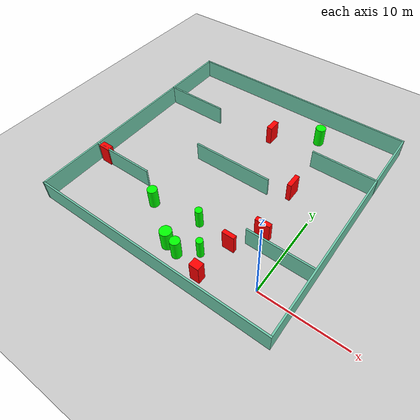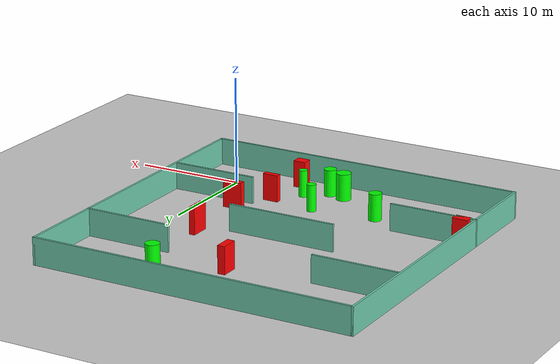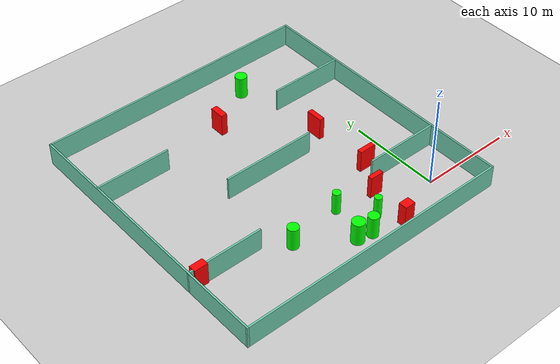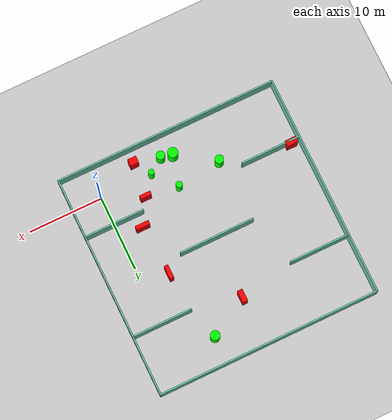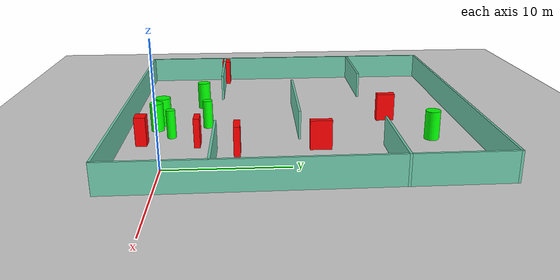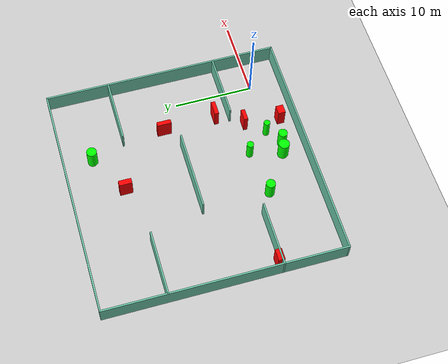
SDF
<sdf version="1.7">
 <world name="default">
  <light name="sun" type="directional">
   <pose>0 0 10 0 -0 0</pose>
   <diffuse>0.8 0.8 0.8 1</diffuse>
   <specular>0.2 0.2 0.2 1</specular>
   <attenuation>
    <range>1000</range>
    <constant>0.9</constant>
    <linear>0.01</linear>
    <quadratic>0.001</quadratic>
   </attenuation>
   <direction>-0.5 0.1 -0.9</direction>
   <spot><inner_angle>0</inner_angle><outer_angle>0</outer_angle><falloff>0</falloff></spot>
  </light>
  <model name="ground_plane">
   <static>1</static>
   <link name="link">
    <collision name="collision">
     <geometry><plane><normal>0 0 1</normal><size>100 100</size></plane></geometry>
     <surface>
      <contact><collide_bitmask>65535</collide_bitmask></contact>
      <friction><ode><mu>100</mu><mu2>50</mu2></ode></friction>
     </surface>
    </collision>
    <visual name="visual">
     <cast_shadows>0</cast_shadows>
     <geometry><plane><normal>0 0 1</normal><size>100 100</size></plane></geometry>
     <material>
      <script><uri>file://media/materials/scripts/gazebo.material</uri><name>Gazebo/Grey</name></script>
     </material>
    </visual>
   </link>
  </model>
  <gravity>0 0 -9.8</gravity>
  <magnetic_field>6e-06 2.3e-05 -4.2e-05</magnetic_field>
  <atmosphere type="adiabatic"/>
  <physics type="ode">
   <max_step_size>0.001</max_step_size>
   <real_time_factor>1</real_time_factor>
   <real_time_update_rate>1000</real_time_update_rate>
  </physics>
  <scene><ambient>0.4 0.4 0.4 1</ambient><background>0.7 0.7 0.7 1</background><shadows>1</shadows></scene>
  <spherical_coordinates>
   <surface_model>EARTH_WGS84</surface_model>
   <latitude_deg>0</latitude_deg>
   <longitude_deg>0</longitude_deg>
   <elevation>0</elevation>
   <heading_deg>0</heading_deg>
  </spherical_coordinates>
  <model name="my_base_walls">
   <link name="Wall_10">
    <collision name="Wall_10_Collision">
     <geometry><box><size>8.2 0.2 2.5</size></box></geometry>
     <pose>0 0 1.25 0 -0 0</pose>
    </collision>
    <visual name="Wall_10_Visual">
     <pose>0 0 1.25 0 -0 0</pose>
     <geometry><box><size>8.2 0.2 2.5</size></box></geometry>
     <material>
      <script><uri>file://media/materials/scripts/gazebo.material</uri><name>Gazebo/Grey</name></script>
      <ambient>0.435294 0.796078 0.67451 1</ambient>
     </material>
     <meta><layer>0</layer></meta>
    </visual>
    <pose>-11 -7 0 0 -0 0</pose>
   </link>
   <link name="Wall_12">
    <collision name="Wall_12_Collision">
     <geometry><box><size>8.2 0.2 2.5</size></box></geometry>
     <pose>0 0 1.25 0 -0 0</pose>
    </collision>
    <visual name="Wall_12_Visual">
     <pose>0 0 1.25 0 -0 0</pose>
     <geometry><box><size>8.2 0.2 2.5</size></box></geometry>
     <material>
      <script><uri>file://media/materials/scripts/gazebo.material</uri><name>Gazebo/Grey</name></script>
      <ambient>0.435294 0.796078 0.67451 1</ambient>
     </material>
     <meta><layer>0</layer></meta>
    </visual>
    <pose>-11 7 0 0 -0 0</pose>
   </link>
   <link name="Wall_14">
    <collision name="Wall_14_Collision">
     <geometry><box><size>8.2 0.2 2.5</size></box></geometry>
     <pose>0 0 1.25 0 -0 0</pose>
    </collision>
    <visual name="Wall_14_Visual">
     <pose>0 0 1.25 0 -0 0</pose>
     <geometry><box><size>8.2 0.2 2.5</size></box></geometry>
     <material>
      <script><uri>file://media/materials/scripts/gazebo.material</uri><name>Gazebo/Grey</name></script>
      <ambient>0.435294 0.796078 0.67451 1</ambient>
     </material>
     <meta><layer>0</layer></meta>
    </visual>
    <pose>11 7 0 0 -0 3.14159</pose>
   </link>
   <link name="Wall_16">
    <collision name="Wall_16_Collision">
     <geometry><box><size>10.2 0.2 2.5</size></box></geometry>
     <pose>0 0 1.25 0 -0 0</pose>
    </collision>
    <visual name="Wall_16_Visual">
     <pose>0 0 1.25 0 -0 0</pose>
     <geometry><box><size>10.2 0.2 2.5</size></box></geometry>
     <material>
      <script><uri>file://media/materials/scripts/gazebo.material</uri><name>Gazebo/Grey</name></script>
      <ambient>0.435294 0.796078 0.67451 1</ambient>
     </material>
     <meta><layer>0</layer></meta>
    </visual>
    <pose>0 0 0 0 -0 3.14159</pose>
   </link>
   <link name="Wall_2">
    <collision name="Wall_2_Collision">
     <geometry><box><size>30.2 0.2 2.5</size></box></geometry>
     <pose>0 0 1.25 0 -0 0</pose>
    </collision>
    <visual name="Wall_2_Visual">
     <pose>0 0 1.25 0 -0 0</pose>
     <geometry><box><size>30.2 0.2 2.5</size></box></geometry>
     <material>
      <script><uri>file://media/materials/scripts/gazebo.material</uri><name>Gazebo/Grey</name></script>
      <ambient>0.435294 0.796078 0.67451 1</ambient>
     </material>
     <meta><layer>0</layer></meta>
    </visual>
    <pose>0 -15 0 0 -0 3.14159</pose>
   </link>
   <link name="Wall_3">
    <collision name="Wall_3_Collision">
     <geometry><box><size>30.2 0.2 2.5</size></box></geometry>
     <pose>0 0 1.25 0 -0 0</pose>
    </collision>
    <visual name="Wall_3_Visual">
     <pose>0 0 1.25 0 -0 0</pose>
     <geometry><box><size>30.2 0.2 2.5</size></box></geometry>
     <material>
      <script><uri>file://media/materials/scripts/gazebo.material</uri><name>Gazebo/Grey</name></script>
      <ambient>0.435294 0.796078 0.67451 1</ambient>
     </material>
     <meta><layer>0</layer></meta>
    </visual>
    <pose>-15 0 0 0 -0 1.5708</pose>
   </link>
   <link name="Wall_4">
    <collision name="Wall_4_Collision">
     <geometry><box><size>30.2 0.2 2.5</size></box></geometry>
     <pose>0 0 1.25 0 -0 0</pose>
    </collision>
    <visual name="Wall_4_Visual">
     <pose>0 0 1.25 0 -0 0</pose>
     <geometry><box><size>30.2 0.2 2.5</size></box></geometry>
     <material>
      <script><uri>file://media/materials/scripts/gazebo.material</uri><name>Gazebo/Grey</name></script>
      <ambient>0.435294 0.796078 0.67451 1</ambient>
     </material>
     <meta><layer>0</layer></meta>
    </visual>
    <pose>0 15 0 0 -0 0</pose>
   </link>
   <link name="Wall_6">
    <collision name="Wall_6_Collision">
     <geometry><box><size>30.2 0.2 2.5</size></box></geometry>
     <pose>0 0 1.25 0 -0 0</pose>
    </collision>
    <visual name="Wall_6_Visual">
     <pose>0 0 1.25 0 -0 0</pose>
     <geometry><box><size>30.2 0.2 2.5</size></box></geometry>
     <material>
      <script><uri>file://media/materials/scripts/gazebo.material</uri><name>Gazebo/Grey</name></script>
      <ambient>0.435294 0.796078 0.67451 1</ambient>
     </material>
     <meta><layer>0</layer></meta>
    </visual>
    <pose>15 0 0 0 -0 1.5708</pose>
   </link>
   <link name="Wall_8">
    <collision name="Wall_8_Collision">
     <geometry><box><size>8.2 0.2 2.5</size></box></geometry>
     <pose>0 0 1.25 0 -0 0</pose>
    </collision>
    <visual name="Wall_8_Visual">
     <pose>0 0 1.25 0 -0 0</pose>
     <geometry><box><size>8.2 0.2 2.5</size></box></geometry>
     <material>
      <script><uri>file://media/materials/scripts/gazebo.material</uri><name>Gazebo/Grey</name></script>
      <ambient>0.435294 0.796078 0.67451 1</ambient>
     </material>
     <meta><layer>0</layer></meta>
    </visual>
    <pose>11 -7 0 0 -0 3.14159</pose>
   </link>
   <static>1</static>
   <pose>-11 11 0 0 -0 0</pose>
  </model>
  <model name="cylinder1">
   <static>1</static>
   <link name="link">
    <inertial>
     <mass>1</mass>
     <inertia><ixx>0.5</ixx><ixy>0</ixy><ixz>0</ixz><iyy>0.5</iyy><iyz>0</iyz><izz>1</izz></inertia>
    </inertial>
    <collision name="collision">
     <geometry><cylinder><radius>0.5888725052651238</radius><length>2.5</length></cylinder></geometry>
    </collision>
    <visual name="visual">
     <geometry><cylinder><radius>0.5888725052651238</radius><length>2.5</length></cylinder></geometry>
     <material>
      <ambient>0 1 0 1</ambient>
      <diffuse>0 1 0 1</diffuse>
      <specular>0.1 0.1 0.1 1</specular>
      <emissive>0 0 0 0</emissive>
     </material>
    </visual>
   </link>
   <pose>-15.526053412583764 2.2998769692267667 1.25 0 0 0</pose>
  </model>
  <model name="cylinder2">
   <static>1</static>
   <link name="link">
    <inertial>
     <mass>1</mass>
     <inertia><ixx>0.5</ixx><ixy>0</ixy><ixz>0</ixz><iyy>0.5</iyy><iyz>0</iyz><izz>1</izz></inertia>
    </inertial>
    <collision name="collision">
     <geometry><cylinder><radius>0.6853110854791115</radius><length>2.5</length></cylinder></geometry>
    </collision>
    <visual name="visual">
     <geometry><cylinder><radius>0.6853110854791115</radius><length>2.5</length></cylinder></geometry>
     <material>
      <ambient>0 1 0 1</ambient>
      <diffuse>0 1 0 1</diffuse>
      <specular>0.1 0.1 0.1 1</specular>
      <emissive>0 0 0 0</emissive>
     </material>
    </visual>
   </link>
   <pose>-10.592338317497905 -1.0340845019596032 1.25 0 0 0</pose>
  </model>
  <model name="cylinder3">
   <static>1</static>
   <link name="link">
    <inertial>
     <mass>1</mass>
     <inertia><ixx>0.5</ixx><ixy>0</ixy><ixz>0</ixz><iyy>0.5</iyy><iyz>0</iyz><izz>1</izz></inertia>
    </inertial>
    <collision name="collision">
     <geometry><cylinder><radius>0.3954229242927821</radius><length>2.5</length></cylinder></geometry>
    </collision>
    <visual name="visual">
     <geometry><cylinder><radius>0.3954229242927821</radius><length>2.5</length></cylinder></geometry>
     <material>
      <ambient>0 1 0 1</ambient>
      <diffuse>0 1 0 1</diffuse>
      <specular>0.1 0.1 0.1 1</specular>
      <emissive>0 0 0 0</emissive>
     </material>
    </visual>
   </link>
   <pose>-7.052629020851427 0.06524100652238651 1.25 0 0 0</pose>
  </model>
  <model name="cylinder4">
   <static>1</static>
   <link name="link">
    <inertial>
     <mass>1</mass>
     <inertia><ixx>0.5</ixx><ixy>0</ixy><ixz>0</ixz><iyy>0.5</iyy><iyz>0</iyz><izz>1</izz></inertia>
    </inertial>
    <collision name="collision">
     <geometry><cylinder><radius>0.43055923438020055</radius><length>2.5</length></cylinder></geometry>
    </collision>
    <visual name="visual">
     <geometry><cylinder><radius>0.43055923438020055</radius><length>2.5</length></cylinder></geometry>
     <material>
      <ambient>0 1 0 1</ambient>
      <diffuse>0 1 0 1</diffuse>
      <specular>0.1 0.1 0.1 1</specular>
      <emissive>0 0 0 0</emissive>
     </material>
    </visual>
   </link>
   <pose>-9.550924104338485 3.0297227317382918 1.25 0 0 0</pose>
  </model>
  <model name="cylinder5">
   <static>1</static>
   <link name="link">
    <inertial>
     <mass>1</mass>
     <inertia><ixx>0.5</ixx><ixy>0</ixy><ixz>0</ixz><iyy>0.5</iyy><iyz>0</iyz><izz>1</izz></inertia>
    </inertial>
    <collision name="collision">
     <geometry><cylinder><radius>0.5733685218423219</radius><length>2.5</length></cylinder></geometry>
    </collision>
    <visual name="visual">
     <geometry><cylinder><radius>0.5733685218423219</radius><length>2.5</length></cylinder></geometry>
     <material>
      <ambient>0 1 0 1</ambient>
      <diffuse>0 1 0 1</diffuse>
      <specular>0.1 0.1 0.1 1</specular>
      <emissive>0 0 0 0</emissive>
     </material>
    </visual>
   </link>
   <pose>-9.042009280070367 -1.3885204833985179 1.25 0 0 0</pose>
  </model>
  <model name="cylinder6">
   <static>1</static>
   <link name="link">
    <inertial>
     <mass>1</mass>
     <inertia><ixx>0.5</ixx><ixy>0</ixy><ixz>0</ixz><iyy>0.5</iyy><iyz>0</iyz><izz>1</izz></inertia>
    </inertial>
    <collision name="collision">
     <geometry><cylinder><radius>0.6361255204952445</radius><length>2.5</length></cylinder></geometry>
    </collision>
    <visual name="visual">
     <geometry><cylinder><radius>0.6361255204952445</radius><length>2.5</length></cylinder></geometry>
     <material>
      <ambient>0 1 0 1</ambient>
      <diffuse>0 1 0 1</diffuse>
      <specular>0.1 0.1 0.1 1</specular>
      <emissive>0 0 0 0</emissive>
     </material>
    </visual>
   </link>
   <pose>-5.300601197467428 22.292888438461585 1.25 0 0 0</pose>
  </model>
  <model name="box1">
   <static>1</static>
   <link name="link">
    <inertial>
     <mass>1</mass>
     <inertia><ixx>0.083</ixx><ixy>0</ixy><ixz>0</ixz><iyy>0.083</iyy><iyz>0</iyz><izz>0.083</izz></inertia>
    </inertial>
    <collision name="collision">
     <geometry><box><size>1.4763507559371232 0.503533764172162 2.5</size></box></geometry>
    </collision>
    <visual name="visual">
     <geometry><box><size>1.4763507559371232 0.503533764172162 2.5</size></box></geometry>
     <material>
      <ambient>1 0 0 1</ambient>
      <diffuse>1 0 0 1</diffuse>
      <specular>0.1 0.1 0.1 1</specular>
      <emissive>0 0 0 0</emissive>
     </material>
    </visual>
    <sensor name="my_contact" type="contact">
     <contact><collision>box_collision</collision><topic>__default_topic__</topic></contact>
    </sensor>
   </link>
   <pose>-5.125070152418303 2.43808369590932 1.25 0 0 0</pose>
  </model>
  <model name="box2">
   <static>1</static>
   <link name="link">
    <inertial>
     <mass>1</mass>
     <inertia><ixx>0.083</ixx><ixy>0</ixy><ixz>0</ixz><iyy>0.083</iyy><iyz>0</iyz><izz>0.083</izz></inertia>
    </inertial>
    <collision name="collision">
     <geometry><box><size>0.5477274665204496 1.8189069124461932 2.5</size></box></geometry>
    </collision>
    <visual name="visual">
     <geometry><box><size>0.5477274665204496 1.8189069124461932 2.5</size></box></geometry>
     <material>
      <ambient>1 0 0 1</ambient>
      <diffuse>1 0 0 1</diffuse>
      <specular>0.1 0.1 0.1 1</specular>
      <emissive>0 0 0 0</emissive>
     </material>
    </visual>
    <sensor name="my_contact" type="contact">
     <contact><collision>box_collision</collision><topic>__default_topic__</topic></contact>
    </sensor>
   </link>
   <pose>-3.580577522203228 12.56502714666911 1.25 0 0 0</pose>
  </model>
  <model name="box3">
   <static>1</static>
   <link name="link">
    <inertial>
     <mass>1</mass>
     <inertia><ixx>0.083</ixx><ixy>0</ixy><ixz>0</ixz><iyy>0.083</iyy><iyz>0</iyz><izz>0.083</izz></inertia>
    </inertial>
    <collision name="collision">
     <geometry><box><size>0.6854961591823475 1.6256352811311934 2.5</size></box></geometry>
    </collision>
    <visual name="visual">
     <geometry><box><size>0.6854961591823475 1.6256352811311934 2.5</size></box></geometry>
     <material>
      <ambient>1 0 0 1</ambient>
      <diffuse>1 0 0 1</diffuse>
      <specular>0.1 0.1 0.1 1</specular>
      <emissive>0 0 0 0</emissive>
     </material>
    </visual>
    <sensor name="my_contact" type="contact">
     <contact><collision>box_collision</collision><topic>__default_topic__</topic></contact>
    </sensor>
   </link>
   <pose>-10.555352244518597 19.286267451774137 1.25 0 0 0</pose>
  </model>
  <model name="box4">
   <static>1</static>
   <link name="link">
    <inertial>
     <mass>1</mass>
     <inertia><ixx>0.083</ixx><ixy>0</ixy><ixz>0</ixz><iyy>0.083</iyy><iyz>0</iyz><izz>0.083</izz></inertia>
    </inertial>
    <collision name="collision">
     <geometry><box><size>1.1532100894103225 0.9339147296525114 2.5</size></box></geometry>
    </collision>
    <visual name="visual">
     <geometry><box><size>1.1532100894103225 0.9339147296525114 2.5</size></box></geometry>
     <material>
      <ambient>1 0 0 1</ambient>
      <diffuse>1 0 0 1</diffuse>
      <specular>0.1 0.1 0.1 1</specular>
      <emissive>0 0 0 0</emissive>
     </material>
    </visual>
    <sensor name="my_contact" type="contact">
     <contact><collision>box_collision</collision><topic>__default_topic__</topic></contact>
    </sensor>
   </link>
   <pose>-5.607980877172649 -2.211140387368921 1.25 0 0 0</pose>
  </model>
  <model name="box5">
   <static>1</static>
   <link name="link">
    <inertial>
     <mass>1</mass>
     <inertia><ixx>0.083</ixx><ixy>0</ixy><ixz>0</ixz><iyy>0.083</iyy><iyz>0</iyz><izz>0.083</izz></inertia>
    </inertial>
    <collision name="collision">
     <geometry><box><size>1.8363560162256645 0.5357271203403369 2.5</size></box></geometry>
    </collision>
    <visual name="visual">
     <geometry><box><size>1.8363560162256645 0.5357271203403369 2.5</size></box></geometry>
     <material>
      <ambient>1 0 0 1</ambient>
      <diffuse>1 0 0 1</diffuse>
      <specular>0.1 0.1 0.1 1</specular>
      <emissive>0 0 0 0</emissive>
     </material>
    </visual>
    <sensor name="my_contact" type="contact">
     <contact><collision>box_collision</collision><topic>__default_topic__</topic></contact>
    </sensor>
   </link>
   <pose>-3.1464653695149174 5.759266269119792 1.25 0 0 0</pose>
  </model>
  <model name="box6">
   <static>1</static>
   <link name="link">
    <inertial>
     <mass>1</mass>
     <inertia><ixx>0.083</ixx><ixy>0</ixy><ixz>0</ixz><iyy>0.083</iyy><iyz>0</iyz><izz>0.083</izz></inertia>
    </inertial>
    <collision name="collision">
     <geometry><box><size>1.452918200646357 0.803918763638451 2.5</size></box></geometry>
    </collision>
    <visual name="visual">
     <geometry><box><size>1.452918200646357 0.803918763638451 2.5</size></box></geometry>
     <material>
      <ambient>1 0 0 1</ambient>
      <diffuse>1 0 0 1</diffuse>
      <specular>0.1 0.1 0.1 1</specular>
      <emissive>0 0 0 0</emissive>
     </material>
    </visual>
    <sensor name="my_contact" type="contact">
     <contact><collision>box_collision</collision><topic>__default_topic__</topic></contact>
    </sensor>
   </link>
   <pose>-24.792136477657607 4.1739219344543 1.25 0 0 0</pose>
  </model>
 </world>
</sdf>
